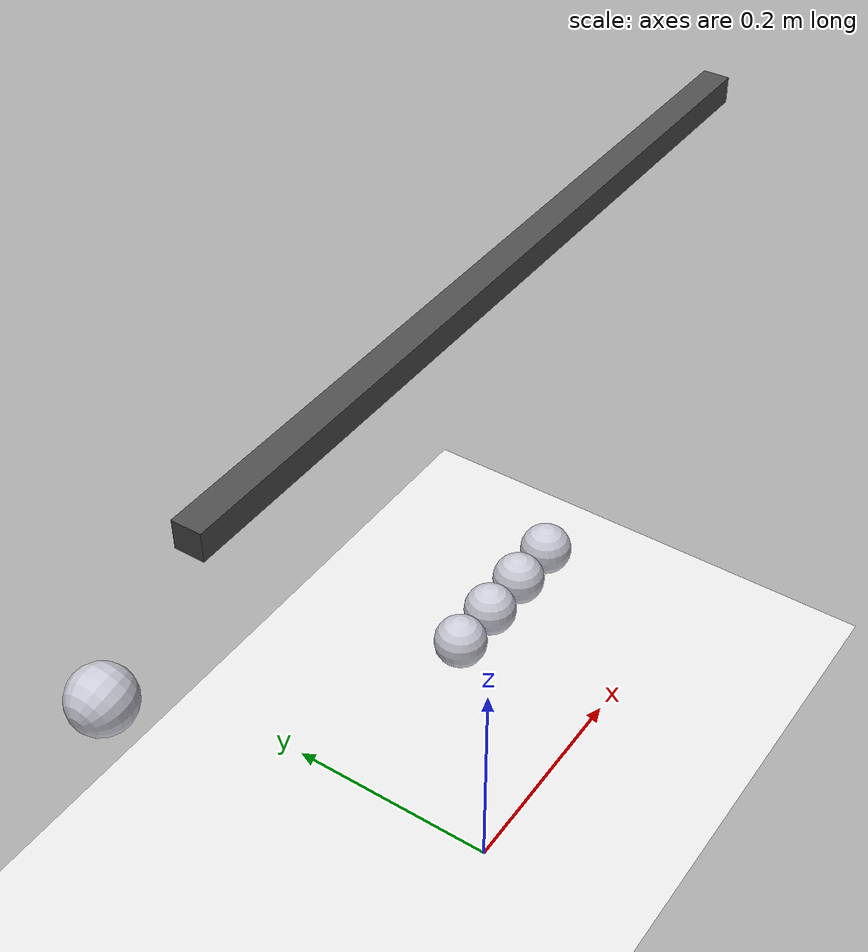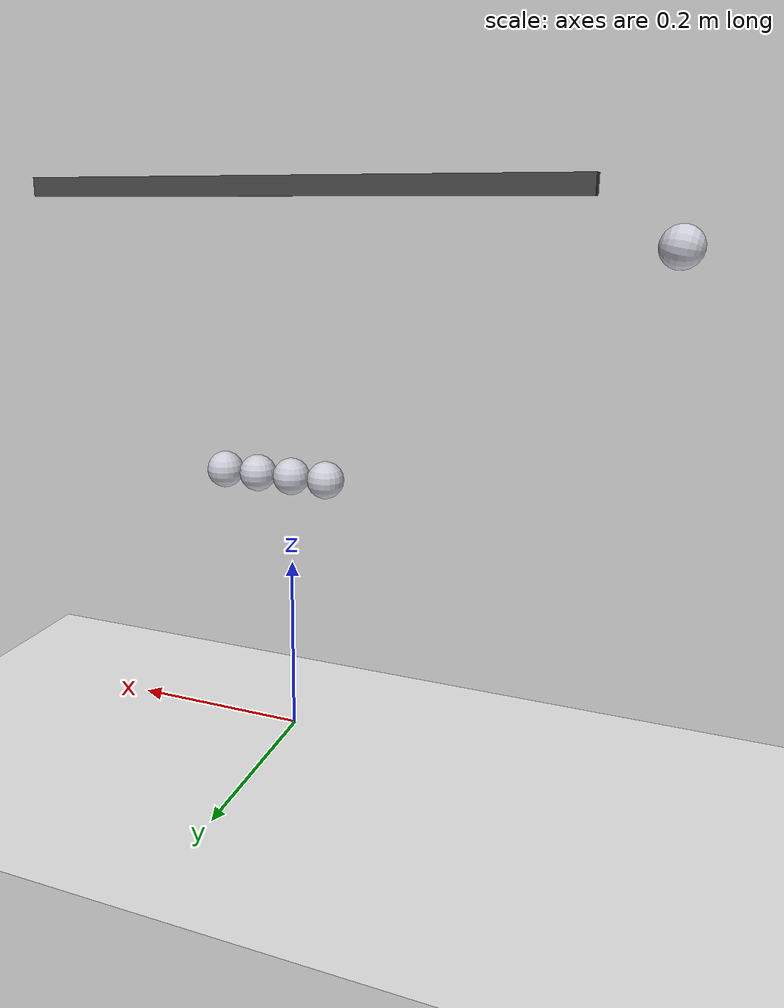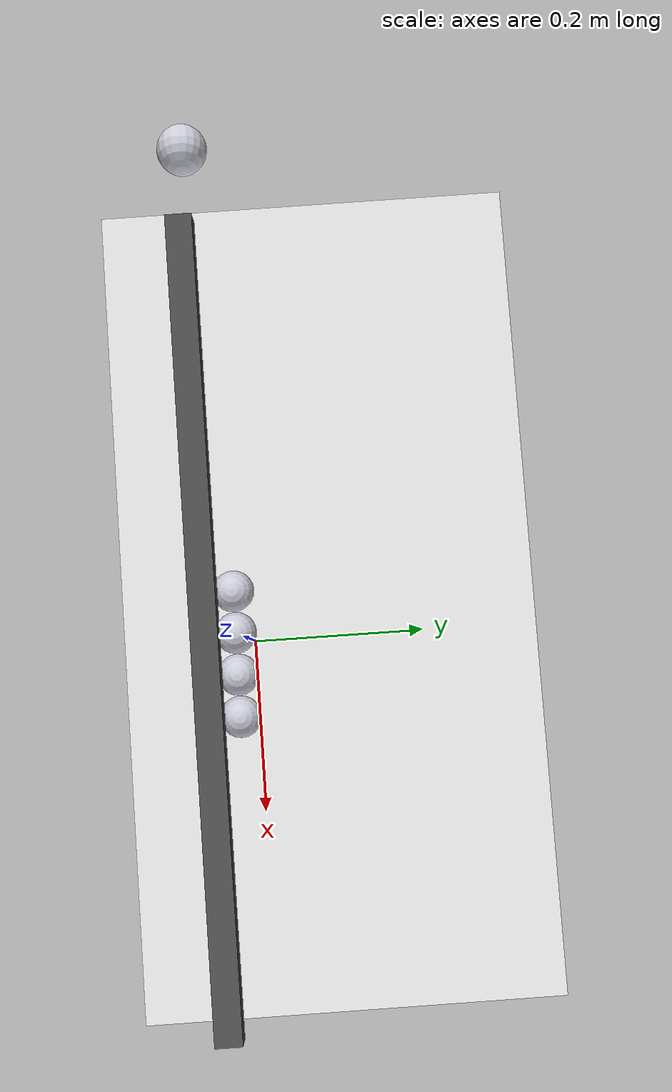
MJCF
<mujoco model="newtons_cradle">

  <compiler angle="radian" coordinate="local" />
  <option
        timestep="0.0005"
        gravity="0 0 -9.81"
        iterations="100"
        solver="Newton"
    />

  <!-- ================= DEFAULTS ================= -->
  <default>
    <geom
            type="sphere"
            size="0.02"
            mass="1"
            friction="0 0 0"
            solref="0.001 1"
            solimp="0.95 0.95 0.001"
            condim="1"
            rgba="0.8 0.8 0.85 1"
        />

    <joint type="hinge" axis="0 1 0" damping="0" armature="0" />
  </default>

  <!-- ================= ASSETS ================= -->
  <asset>
    <texture
            name="sky"
            type="skybox"
            builtin="gradient"
            rgb1="0.2 0.3 0.5"
            rgb2="0.8 0.9 1"
            width="512"
            height="512"
        />

    <material name="metal" specular="0.9" shininess="0.8" reflectance="0.2" />
  </asset>

  <!-- ================= WORLD ================= -->
  <worldbody>

    <!-- Global light -->
    <light
            name="sun"
            directional="true"
            diffuse="1 1 1"
            specular="0.4 0.4 0.4"
            pos="0 0 1"
            dir="0 0 -1"
            castshadow="true"
        />

    <!-- Fill light -->
    <light
            name="fill"
            directional="false"
            diffuse="0.3 0.3 0.3"
            pos="0.5 0.5 0.5"
        />

    <!-- Ground -->
    <geom type="plane" size="2 2 0.1" rgba="0.9 0.9 0.9 1" />

    <!-- Support frame -->
    <body name="frame" pos="0 0 0.6">
      <geom type="box" size="0.3 0.01 0.01" rgba="0.3 0.3 0.3 1" />

      <!-- BALL 1 -->
      <body pos="-0.08 0 0" quat="0.955336 0 0.8 0">
        <joint name="j1" />
        <body pos="0 0 -0.3">
          <geom material="metal" />
        </body>
      </body>

      <!-- BALL 2 -->
      <body pos="-0.04 0 0">
        <joint name="j2" />
        <body pos="0 0 -0.3">
          <geom material="metal" />
        </body>
      </body>

      <!-- BALL 3 -->
      <body pos="0 0 0">
        <joint name="j3" />
        <body pos="0 0 -0.3">
          <geom material="metal" />
        </body>
      </body>

      <!-- BALL 4 -->
      <body pos="0.04 0 0">
        <joint name="j4" />
        <body pos="0 0 -0.3">
          <geom material="metal" />
        </body>
      </body>

      <!-- BALL 5 -->
      <body pos="0.08 0 0">
        <joint name="j5" />
        <body pos="0 0 -0.3">
          <geom material="metal" />
        </body>
      </body>

    </body>
  </worldbody>

  <!-- ================= INITIAL CONDITION ================= -->
  <!-- First ball is pre-rotated about the hinge axis; no keyframe needed. -->

</mujoco>
